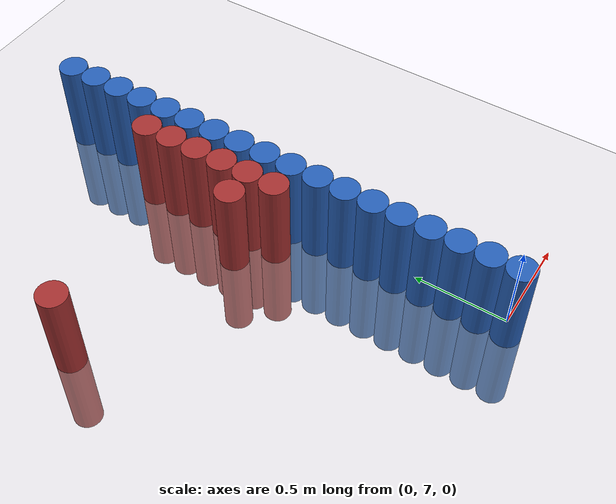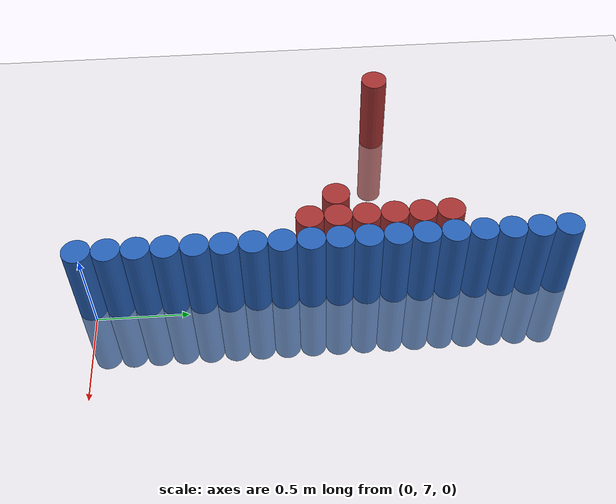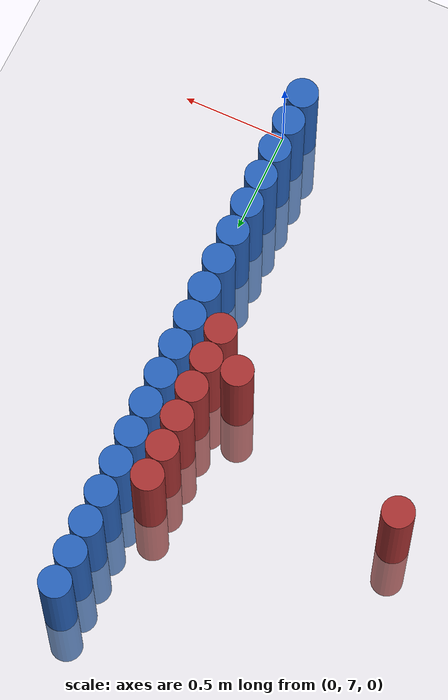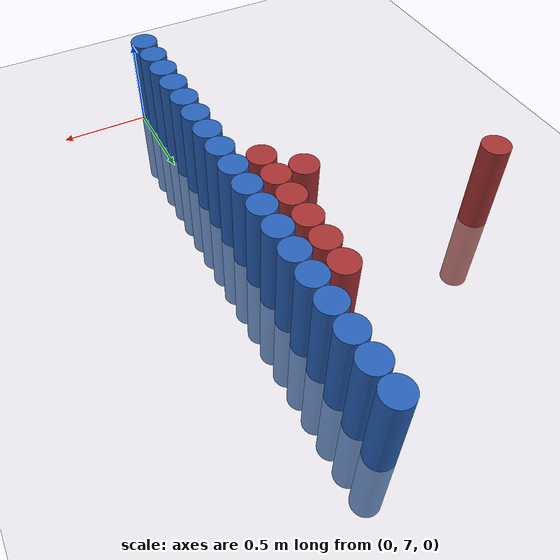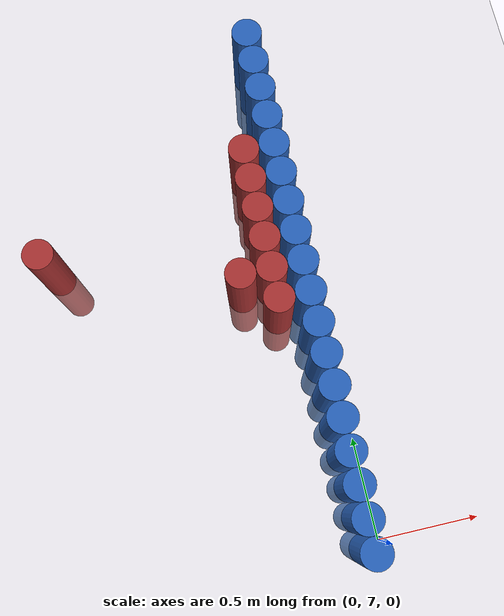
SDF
<sdf version="1.6">
 <world name="default">
  <model name="ground_plane">
   <static>1</static>
   <link name="link">
    <collision name="collision">
     <geometry><plane><normal>0 0 1</normal><size>100 100</size></plane></geometry>
     <surface><friction><ode><mu>100</mu><mu2>50</mu2></ode></friction></surface>
    </collision>
    <visual name="visual">
     <cast_shadows>0</cast_shadows>
     <geometry><plane><normal>0 0 1</normal><size>100 100</size></plane></geometry>
     <material>
      <script><uri>file://media/materials/scripts/gazebo.material</uri><name>Gazebo/Grey</name></script>
     </material>
    </visual>
   </link>
  </model>
  <model name="unit_cylinder_150">
   <static>1</static>
   <pose>-1.275000 8.625000 0.000000 0.000000 0.000000 0.000000</pose>
   <link name="link">
    <inertial>
     <mass>1</mass>
     <inertia><ixx>0.145833</ixx><ixy>0</ixy><ixz>0</ixz><iyy>0.145833</iyy><iyz>0</iyz><izz>0.125</izz></inertia>
    </inertial>
    <collision name="collision">
     <geometry><cylinder><radius>0.075000</radius><length>1</length></cylinder></geometry>
    </collision>
    <visual name="visual">
     <geometry><cylinder><radius>0.075000</radius><length>1</length></cylinder></geometry>
     <material>
      <ambient>0.648000 0.192000 0.192000 1</ambient>
      <diffuse>0.648000 0.192000 0.192000 1</diffuse>
     </material>
     <material>
      <script><name>Gazebo/Grey</name><uri>file://media/materials/scripts/gazebo.material</uri></script>
     </material>
    </visual>
   </link>
  </model>
  <model name="unit_cylinder_160">
   <static>1</static>
   <pose>-0.375000 8.325000 0.000000 0.000000 0.000000 0.000000</pose>
   <link name="link">
    <inertial>
     <mass>1</mass>
     <inertia><ixx>0.145833</ixx><ixy>0</ixy><ixz>0</ixz><iyy>0.145833</iyy><iyz>0</iyz><izz>0.125</izz></inertia>
    </inertial>
    <collision name="collision">
     <geometry><cylinder><radius>0.075000</radius><length>1</length></cylinder></geometry>
    </collision>
    <visual name="visual">
     <geometry><cylinder><radius>0.075000</radius><length>1</length></cylinder></geometry>
     <material>
      <ambient>0.648000 0.192000 0.192000 1</ambient>
      <diffuse>0.648000 0.192000 0.192000 1</diffuse>
     </material>
     <material>
      <script><name>Gazebo/Grey</name><uri>file://media/materials/scripts/gazebo.material</uri></script>
     </material>
    </visual>
   </link>
  </model>
  <model name="unit_cylinder_167">
   <static>1</static>
   <pose>-0.225000 8.175000 0.000000 0.000000 0.000000 0.000000</pose>
   <link name="link">
    <inertial>
     <mass>1</mass>
     <inertia><ixx>0.145833</ixx><ixy>0</ixy><ixz>0</ixz><iyy>0.145833</iyy><iyz>0</iyz><izz>0.125</izz></inertia>
    </inertial>
    <collision name="collision">
     <geometry><cylinder><radius>0.075000</radius><length>1</length></cylinder></geometry>
    </collision>
    <visual name="visual">
     <geometry><cylinder><radius>0.075000</radius><length>1</length></cylinder></geometry>
     <material>
      <ambient>0.648000 0.192000 0.192000 1</ambient>
      <diffuse>0.648000 0.192000 0.192000 1</diffuse>
     </material>
     <material>
      <script><name>Gazebo/Grey</name><uri>file://media/materials/scripts/gazebo.material</uri></script>
     </material>
    </visual>
   </link>
  </model>
  <model name="unit_cylinder_168">
   <static>1</static>
   <pose>-0.225000 8.325000 0.000000 0.000000 0.000000 0.000000</pose>
   <link name="link">
    <inertial>
     <mass>1</mass>
     <inertia><ixx>0.145833</ixx><ixy>0</ixy><ixz>0</ixz><iyy>0.145833</iyy><iyz>0</iyz><izz>0.125</izz></inertia>
    </inertial>
    <collision name="collision">
     <geometry><cylinder><radius>0.075000</radius><length>1</length></cylinder></geometry>
    </collision>
    <visual name="visual">
     <geometry><cylinder><radius>0.075000</radius><length>1</length></cylinder></geometry>
     <material>
      <ambient>0.648000 0.192000 0.192000 1</ambient>
      <diffuse>0.648000 0.192000 0.192000 1</diffuse>
     </material>
     <material>
      <script><name>Gazebo/Grey</name><uri>file://media/materials/scripts/gazebo.material</uri></script>
     </material>
    </visual>
   </link>
  </model>
  <model name="unit_cylinder_169">
   <static>1</static>
   <pose>-0.225000 8.475000 0.000000 0.000000 0.000000 0.000000</pose>
   <link name="link">
    <inertial>
     <mass>1</mass>
     <inertia><ixx>0.145833</ixx><ixy>0</ixy><ixz>0</ixz><iyy>0.145833</iyy><iyz>0</iyz><izz>0.125</izz></inertia>
    </inertial>
    <collision name="collision">
     <geometry><cylinder><radius>0.075000</radius><length>1</length></cylinder></geometry>
    </collision>
    <visual name="visual">
     <geometry><cylinder><radius>0.075000</radius><length>1</length></cylinder></geometry>
     <material>
      <ambient>0.648000 0.192000 0.192000 1</ambient>
      <diffuse>0.648000 0.192000 0.192000 1</diffuse>
     </material>
     <material>
      <script><name>Gazebo/Grey</name><uri>file://media/materials/scripts/gazebo.material</uri></script>
     </material>
    </visual>
   </link>
  </model>
  <model name="unit_cylinder_170">
   <static>1</static>
   <pose>-0.225000 8.625000 0.000000 0.000000 0.000000 0.000000</pose>
   <link name="link">
    <inertial>
     <mass>1</mass>
     <inertia><ixx>0.145833</ixx><ixy>0</ixy><ixz>0</ixz><iyy>0.145833</iyy><iyz>0</iyz><izz>0.125</izz></inertia>
    </inertial>
    <collision name="collision">
     <geometry><cylinder><radius>0.075000</radius><length>1</length></cylinder></geometry>
    </collision>
    <visual name="visual">
     <geometry><cylinder><radius>0.075000</radius><length>1</length></cylinder></geometry>
     <material>
      <ambient>0.648000 0.192000 0.192000 1</ambient>
      <diffuse>0.648000 0.192000 0.192000 1</diffuse>
     </material>
     <material>
      <script><name>Gazebo/Grey</name><uri>file://media/materials/scripts/gazebo.material</uri></script>
     </material>
    </visual>
   </link>
  </model>
  <model name="unit_cylinder_171">
   <static>1</static>
   <pose>-0.225000 8.775000 0.000000 0.000000 0.000000 0.000000</pose>
   <link name="link">
    <inertial>
     <mass>1</mass>
     <inertia><ixx>0.145833</ixx><ixy>0</ixy><ixz>0</ixz><iyy>0.145833</iyy><iyz>0</iyz><izz>0.125</izz></inertia>
    </inertial>
    <collision name="collision">
     <geometry><cylinder><radius>0.075000</radius><length>1</length></cylinder></geometry>
    </collision>
    <visual name="visual">
     <geometry><cylinder><radius>0.075000</radius><length>1</length></cylinder></geometry>
     <material>
      <ambient>0.648000 0.192000 0.192000 1</ambient>
      <diffuse>0.648000 0.192000 0.192000 1</diffuse>
     </material>
     <material>
      <script><name>Gazebo/Grey</name><uri>file://media/materials/scripts/gazebo.material</uri></script>
     </material>
    </visual>
   </link>
  </model>
  <model name="unit_cylinder_172">
   <static>1</static>
   <pose>-0.225000 8.925000 0.000000 0.000000 0.000000 0.000000</pose>
   <link name="link">
    <inertial>
     <mass>1</mass>
     <inertia><ixx>0.145833</ixx><ixy>0</ixy><ixz>0</ixz><iyy>0.145833</iyy><iyz>0</iyz><izz>0.125</izz></inertia>
    </inertial>
    <collision name="collision">
     <geometry><cylinder><radius>0.075000</radius><length>1</length></cylinder></geometry>
    </collision>
    <visual name="visual">
     <geometry><cylinder><radius>0.075000</radius><length>1</length></cylinder></geometry>
     <material>
      <ambient>0.648000 0.192000 0.192000 1</ambient>
      <diffuse>0.648000 0.192000 0.192000 1</diffuse>
     </material>
     <material>
      <script><name>Gazebo/Grey</name><uri>file://media/materials/scripts/gazebo.material</uri></script>
     </material>
    </visual>
   </link>
  </model>
  <model name="unit_cylinder_185">
   <static>1</static>
   <pose>-0.075000 6.975000 0.000000 0.000000 0.000000 0.000000</pose>
   <link name="link">
    <inertial>
     <mass>1</mass>
     <inertia><ixx>0.145833</ixx><ixy>0</ixy><ixz>0</ixz><iyy>0.145833</iyy><iyz>0</iyz><izz>0.125</izz></inertia>
    </inertial>
    <collision name="collision">
     <geometry><cylinder><radius>0.075000</radius><length>1</length></cylinder></geometry>
    </collision>
    <visual name="visual">
     <geometry><cylinder><radius>0.075000</radius><length>1</length></cylinder></geometry>
     <material>
      <ambient>0.152000 0.379000 0.720000 1</ambient>
      <diffuse>0.152000 0.379000 0.720000 1</diffuse>
     </material>
     <material>
      <script><name>Gazebo/Grey</name><uri>file://media/materials/scripts/gazebo.material</uri></script>
     </material>
    </visual>
   </link>
  </model>
  <model name="unit_cylinder_186">
   <static>1</static>
   <pose>-0.075000 7.125000 0.000000 0.000000 0.000000 0.000000</pose>
   <link name="link">
    <inertial>
     <mass>1</mass>
     <inertia><ixx>0.145833</ixx><ixy>0</ixy><ixz>0</ixz><iyy>0.145833</iyy><iyz>0</iyz><izz>0.125</izz></inertia>
    </inertial>
    <collision name="collision">
     <geometry><cylinder><radius>0.075000</radius><length>1</length></cylinder></geometry>
    </collision>
    <visual name="visual">
     <geometry><cylinder><radius>0.075000</radius><length>1</length></cylinder></geometry>
     <material>
      <ambient>0.152000 0.379000 0.720000 1</ambient>
      <diffuse>0.152000 0.379000 0.720000 1</diffuse>
     </material>
     <material>
      <script><name>Gazebo/Grey</name><uri>file://media/materials/scripts/gazebo.material</uri></script>
     </material>
    </visual>
   </link>
  </model>
  <model name="unit_cylinder_187">
   <static>1</static>
   <pose>-0.075000 7.275000 0.000000 0.000000 0.000000 0.000000</pose>
   <link name="link">
    <inertial>
     <mass>1</mass>
     <inertia><ixx>0.145833</ixx><ixy>0</ixy><ixz>0</ixz><iyy>0.145833</iyy><iyz>0</iyz><izz>0.125</izz></inertia>
    </inertial>
    <collision name="collision">
     <geometry><cylinder><radius>0.075000</radius><length>1</length></cylinder></geometry>
    </collision>
    <visual name="visual">
     <geometry><cylinder><radius>0.075000</radius><length>1</length></cylinder></geometry>
     <material>
      <ambient>0.152000 0.379000 0.720000 1</ambient>
      <diffuse>0.152000 0.379000 0.720000 1</diffuse>
     </material>
     <material>
      <script><name>Gazebo/Grey</name><uri>file://media/materials/scripts/gazebo.material</uri></script>
     </material>
    </visual>
   </link>
  </model>
  <model name="unit_cylinder_188">
   <static>1</static>
   <pose>-0.075000 7.425000 0.000000 0.000000 0.000000 0.000000</pose>
   <link name="link">
    <inertial>
     <mass>1</mass>
     <inertia><ixx>0.145833</ixx><ixy>0</ixy><ixz>0</ixz><iyy>0.145833</iyy><iyz>0</iyz><izz>0.125</izz></inertia>
    </inertial>
    <collision name="collision">
     <geometry><cylinder><radius>0.075000</radius><length>1</length></cylinder></geometry>
    </collision>
    <visual name="visual">
     <geometry><cylinder><radius>0.075000</radius><length>1</length></cylinder></geometry>
     <material>
      <ambient>0.152000 0.379000 0.720000 1</ambient>
      <diffuse>0.152000 0.379000 0.720000 1</diffuse>
     </material>
     <material>
      <script><name>Gazebo/Grey</name><uri>file://media/materials/scripts/gazebo.material</uri></script>
     </material>
    </visual>
   </link>
  </model>
  <model name="unit_cylinder_189">
   <static>1</static>
   <pose>-0.075000 7.575000 0.000000 0.000000 0.000000 0.000000</pose>
   <link name="link">
    <inertial>
     <mass>1</mass>
     <inertia><ixx>0.145833</ixx><ixy>0</ixy><ixz>0</ixz><iyy>0.145833</iyy><iyz>0</iyz><izz>0.125</izz></inertia>
    </inertial>
    <collision name="collision">
     <geometry><cylinder><radius>0.075000</radius><length>1</length></cylinder></geometry>
    </collision>
    <visual name="visual">
     <geometry><cylinder><radius>0.075000</radius><length>1</length></cylinder></geometry>
     <material>
      <ambient>0.152000 0.379000 0.720000 1</ambient>
      <diffuse>0.152000 0.379000 0.720000 1</diffuse>
     </material>
     <material>
      <script><name>Gazebo/Grey</name><uri>file://media/materials/scripts/gazebo.material</uri></script>
     </material>
    </visual>
   </link>
  </model>
  <model name="unit_cylinder_190">
   <static>1</static>
   <pose>-0.075000 7.725000 0.000000 0.000000 0.000000 0.000000</pose>
   <link name="link">
    <inertial>
     <mass>1</mass>
     <inertia><ixx>0.145833</ixx><ixy>0</ixy><ixz>0</ixz><iyy>0.145833</iyy><iyz>0</iyz><izz>0.125</izz></inertia>
    </inertial>
    <collision name="collision">
     <geometry><cylinder><radius>0.075000</radius><length>1</length></cylinder></geometry>
    </collision>
    <visual name="visual">
     <geometry><cylinder><radius>0.075000</radius><length>1</length></cylinder></geometry>
     <material>
      <ambient>0.152000 0.379000 0.720000 1</ambient>
      <diffuse>0.152000 0.379000 0.720000 1</diffuse>
     </material>
     <material>
      <script><name>Gazebo/Grey</name><uri>file://media/materials/scripts/gazebo.material</uri></script>
     </material>
    </visual>
   </link>
  </model>
  <model name="unit_cylinder_191">
   <static>1</static>
   <pose>-0.075000 7.875000 0.000000 0.000000 0.000000 0.000000</pose>
   <link name="link">
    <inertial>
     <mass>1</mass>
     <inertia><ixx>0.145833</ixx><ixy>0</ixy><ixz>0</ixz><iyy>0.145833</iyy><iyz>0</iyz><izz>0.125</izz></inertia>
    </inertial>
    <collision name="collision">
     <geometry><cylinder><radius>0.075000</radius><length>1</length></cylinder></geometry>
    </collision>
    <visual name="visual">
     <geometry><cylinder><radius>0.075000</radius><length>1</length></cylinder></geometry>
     <material>
      <ambient>0.152000 0.379000 0.720000 1</ambient>
      <diffuse>0.152000 0.379000 0.720000 1</diffuse>
     </material>
     <material>
      <script><name>Gazebo/Grey</name><uri>file://media/materials/scripts/gazebo.material</uri></script>
     </material>
    </visual>
   </link>
  </model>
  <model name="unit_cylinder_192">
   <static>1</static>
   <pose>-0.075000 8.025000 0.000000 0.000000 0.000000 0.000000</pose>
   <link name="link">
    <inertial>
     <mass>1</mass>
     <inertia><ixx>0.145833</ixx><ixy>0</ixy><ixz>0</ixz><iyy>0.145833</iyy><iyz>0</iyz><izz>0.125</izz></inertia>
    </inertial>
    <collision name="collision">
     <geometry><cylinder><radius>0.075000</radius><length>1</length></cylinder></geometry>
    </collision>
    <visual name="visual">
     <geometry><cylinder><radius>0.075000</radius><length>1</length></cylinder></geometry>
     <material>
      <ambient>0.152000 0.379000 0.720000 1</ambient>
      <diffuse>0.152000 0.379000 0.720000 1</diffuse>
     </material>
     <material>
      <script><name>Gazebo/Grey</name><uri>file://media/materials/scripts/gazebo.material</uri></script>
     </material>
    </visual>
   </link>
  </model>
  <model name="unit_cylinder_193">
   <static>1</static>
   <pose>-0.075000 8.175000 0.000000 0.000000 0.000000 0.000000</pose>
   <link name="link">
    <inertial>
     <mass>1</mass>
     <inertia><ixx>0.145833</ixx><ixy>0</ixy><ixz>0</ixz><iyy>0.145833</iyy><iyz>0</iyz><izz>0.125</izz></inertia>
    </inertial>
    <collision name="collision">
     <geometry><cylinder><radius>0.075000</radius><length>1</length></cylinder></geometry>
    </collision>
    <visual name="visual">
     <geometry><cylinder><radius>0.075000</radius><length>1</length></cylinder></geometry>
     <material>
      <ambient>0.152000 0.379000 0.720000 1</ambient>
      <diffuse>0.152000 0.379000 0.720000 1</diffuse>
     </material>
     <material>
      <script><name>Gazebo/Grey</name><uri>file://media/materials/scripts/gazebo.material</uri></script>
     </material>
    </visual>
   </link>
  </model>
  <model name="unit_cylinder_194">
   <static>1</static>
   <pose>-0.075000 8.325000 0.000000 0.000000 0.000000 0.000000</pose>
   <link name="link">
    <inertial>
     <mass>1</mass>
     <inertia><ixx>0.145833</ixx><ixy>0</ixy><ixz>0</ixz><iyy>0.145833</iyy><iyz>0</iyz><izz>0.125</izz></inertia>
    </inertial>
    <collision name="collision">
     <geometry><cylinder><radius>0.075000</radius><length>1</length></cylinder></geometry>
    </collision>
    <visual name="visual">
     <geometry><cylinder><radius>0.075000</radius><length>1</length></cylinder></geometry>
     <material>
      <ambient>0.152000 0.379000 0.720000 1</ambient>
      <diffuse>0.152000 0.379000 0.720000 1</diffuse>
     </material>
     <material>
      <script><name>Gazebo/Grey</name><uri>file://media/materials/scripts/gazebo.material</uri></script>
     </material>
    </visual>
   </link>
  </model>
  <model name="unit_cylinder_195">
   <static>1</static>
   <pose>-0.075000 8.475000 0.000000 0.000000 0.000000 0.000000</pose>
   <link name="link">
    <inertial>
     <mass>1</mass>
     <inertia><ixx>0.145833</ixx><ixy>0</ixy><ixz>0</ixz><iyy>0.145833</iyy><iyz>0</iyz><izz>0.125</izz></inertia>
    </inertial>
    <collision name="collision">
     <geometry><cylinder><radius>0.075000</radius><length>1</length></cylinder></geometry>
    </collision>
    <visual name="visual">
     <geometry><cylinder><radius>0.075000</radius><length>1</length></cylinder></geometry>
     <material>
      <ambient>0.152000 0.379000 0.720000 1</ambient>
      <diffuse>0.152000 0.379000 0.720000 1</diffuse>
     </material>
     <material>
      <script><name>Gazebo/Grey</name><uri>file://media/materials/scripts/gazebo.material</uri></script>
     </material>
    </visual>
   </link>
  </model>
  <model name="unit_cylinder_196">
   <static>1</static>
   <pose>-0.075000 8.625000 0.000000 0.000000 0.000000 0.000000</pose>
   <link name="link">
    <inertial>
     <mass>1</mass>
     <inertia><ixx>0.145833</ixx><ixy>0</ixy><ixz>0</ixz><iyy>0.145833</iyy><iyz>0</iyz><izz>0.125</izz></inertia>
    </inertial>
    <collision name="collision">
     <geometry><cylinder><radius>0.075000</radius><length>1</length></cylinder></geometry>
    </collision>
    <visual name="visual">
     <geometry><cylinder><radius>0.075000</radius><length>1</length></cylinder></geometry>
     <material>
      <ambient>0.152000 0.379000 0.720000 1</ambient>
      <diffuse>0.152000 0.379000 0.720000 1</diffuse>
     </material>
     <material>
      <script><name>Gazebo/Grey</name><uri>file://media/materials/scripts/gazebo.material</uri></script>
     </material>
    </visual>
   </link>
  </model>
  <model name="unit_cylinder_197">
   <static>1</static>
   <pose>-0.075000 8.775000 0.000000 0.000000 0.000000 0.000000</pose>
   <link name="link">
    <inertial>
     <mass>1</mass>
     <inertia><ixx>0.145833</ixx><ixy>0</ixy><ixz>0</ixz><iyy>0.145833</iyy><iyz>0</iyz><izz>0.125</izz></inertia>
    </inertial>
    <collision name="collision">
     <geometry><cylinder><radius>0.075000</radius><length>1</length></cylinder></geometry>
    </collision>
    <visual name="visual">
     <geometry><cylinder><radius>0.075000</radius><length>1</length></cylinder></geometry>
     <material>
      <ambient>0.152000 0.379000 0.720000 1</ambient>
      <diffuse>0.152000 0.379000 0.720000 1</diffuse>
     </material>
     <material>
      <script><name>Gazebo/Grey</name><uri>file://media/materials/scripts/gazebo.material</uri></script>
     </material>
    </visual>
   </link>
  </model>
  <model name="unit_cylinder_198">
   <static>1</static>
   <pose>-0.075000 8.925000 0.000000 0.000000 0.000000 0.000000</pose>
   <link name="link">
    <inertial>
     <mass>1</mass>
     <inertia><ixx>0.145833</ixx><ixy>0</ixy><ixz>0</ixz><iyy>0.145833</iyy><iyz>0</iyz><izz>0.125</izz></inertia>
    </inertial>
    <collision name="collision">
     <geometry><cylinder><radius>0.075000</radius><length>1</length></cylinder></geometry>
    </collision>
    <visual name="visual">
     <geometry><cylinder><radius>0.075000</radius><length>1</length></cylinder></geometry>
     <material>
      <ambient>0.152000 0.379000 0.720000 1</ambient>
      <diffuse>0.152000 0.379000 0.720000 1</diffuse>
     </material>
     <material>
      <script><name>Gazebo/Grey</name><uri>file://media/materials/scripts/gazebo.material</uri></script>
     </material>
    </visual>
   </link>
  </model>
  <model name="unit_cylinder_199">
   <static>1</static>
   <pose>-0.075000 9.075000 0.000000 0.000000 0.000000 0.000000</pose>
   <link name="link">
    <inertial>
     <mass>1</mass>
     <inertia><ixx>0.145833</ixx><ixy>0</ixy><ixz>0</ixz><iyy>0.145833</iyy><iyz>0</iyz><izz>0.125</izz></inertia>
    </inertial>
    <collision name="collision">
     <geometry><cylinder><radius>0.075000</radius><length>1</length></cylinder></geometry>
    </collision>
    <visual name="visual">
     <geometry><cylinder><radius>0.075000</radius><length>1</length></cylinder></geometry>
     <material>
      <ambient>0.152000 0.379000 0.720000 1</ambient>
      <diffuse>0.152000 0.379000 0.720000 1</diffuse>
     </material>
     <material>
      <script><name>Gazebo/Grey</name><uri>file://media/materials/scripts/gazebo.material</uri></script>
     </material>
    </visual>
   </link>
  </model>
  <model name="unit_cylinder_200">
   <static>1</static>
   <pose>-0.075000 9.225000 0.000000 0.000000 0.000000 0.000000</pose>
   <link name="link">
    <inertial>
     <mass>1</mass>
     <inertia><ixx>0.145833</ixx><ixy>0</ixy><ixz>0</ixz><iyy>0.145833</iyy><iyz>0</iyz><izz>0.125</izz></inertia>
    </inertial>
    <collision name="collision">
     <geometry><cylinder><radius>0.075000</radius><length>1</length></cylinder></geometry>
    </collision>
    <visual name="visual">
     <geometry><cylinder><radius>0.075000</radius><length>1</length></cylinder></geometry>
     <material>
      <ambient>0.152000 0.379000 0.720000 1</ambient>
      <diffuse>0.152000 0.379000 0.720000 1</diffuse>
     </material>
     <material>
      <script><name>Gazebo/Grey</name><uri>file://media/materials/scripts/gazebo.material</uri></script>
     </material>
    </visual>
   </link>
  </model>
  <model name="unit_cylinder_201">
   <static>1</static>
   <pose>-0.075000 9.375000 0.000000 0.000000 0.000000 0.000000</pose>
   <link name="link">
    <inertial>
     <mass>1</mass>
     <inertia><ixx>0.145833</ixx><ixy>0</ixy><ixz>0</ixz><iyy>0.145833</iyy><iyz>0</iyz><izz>0.125</izz></inertia>
    </inertial>
    <collision name="collision">
     <geometry><cylinder><radius>0.075000</radius><length>1</length></cylinder></geometry>
    </collision>
    <visual name="visual">
     <geometry><cylinder><radius>0.075000</radius><length>1</length></cylinder></geometry>
     <material>
      <ambient>0.152000 0.379000 0.720000 1</ambient>
      <diffuse>0.152000 0.379000 0.720000 1</diffuse>
     </material>
     <material>
      <script><name>Gazebo/Grey</name><uri>file://media/materials/scripts/gazebo.material</uri></script>
     </material>
    </visual>
   </link>
  </model>
  <model name="unit_cylinder_202">
   <static>1</static>
   <pose>-0.075000 9.525000 0.000000 0.000000 0.000000 0.000000</pose>
   <link name="link">
    <inertial>
     <mass>1</mass>
     <inertia><ixx>0.145833</ixx><ixy>0</ixy><ixz>0</ixz><iyy>0.145833</iyy><iyz>0</iyz><izz>0.125</izz></inertia>
    </inertial>
    <collision name="collision">
     <geometry><cylinder><radius>0.075000</radius><length>1</length></cylinder></geometry>
    </collision>
    <visual name="visual">
     <geometry><cylinder><radius>0.075000</radius><length>1</length></cylinder></geometry>
     <material>
      <ambient>0.152000 0.379000 0.720000 1</ambient>
      <diffuse>0.152000 0.379000 0.720000 1</diffuse>
     </material>
     <material>
      <script><name>Gazebo/Grey</name><uri>file://media/materials/scripts/gazebo.material</uri></script>
     </material>
    </visual>
   </link>
  </model>
 </world>
</sdf>
